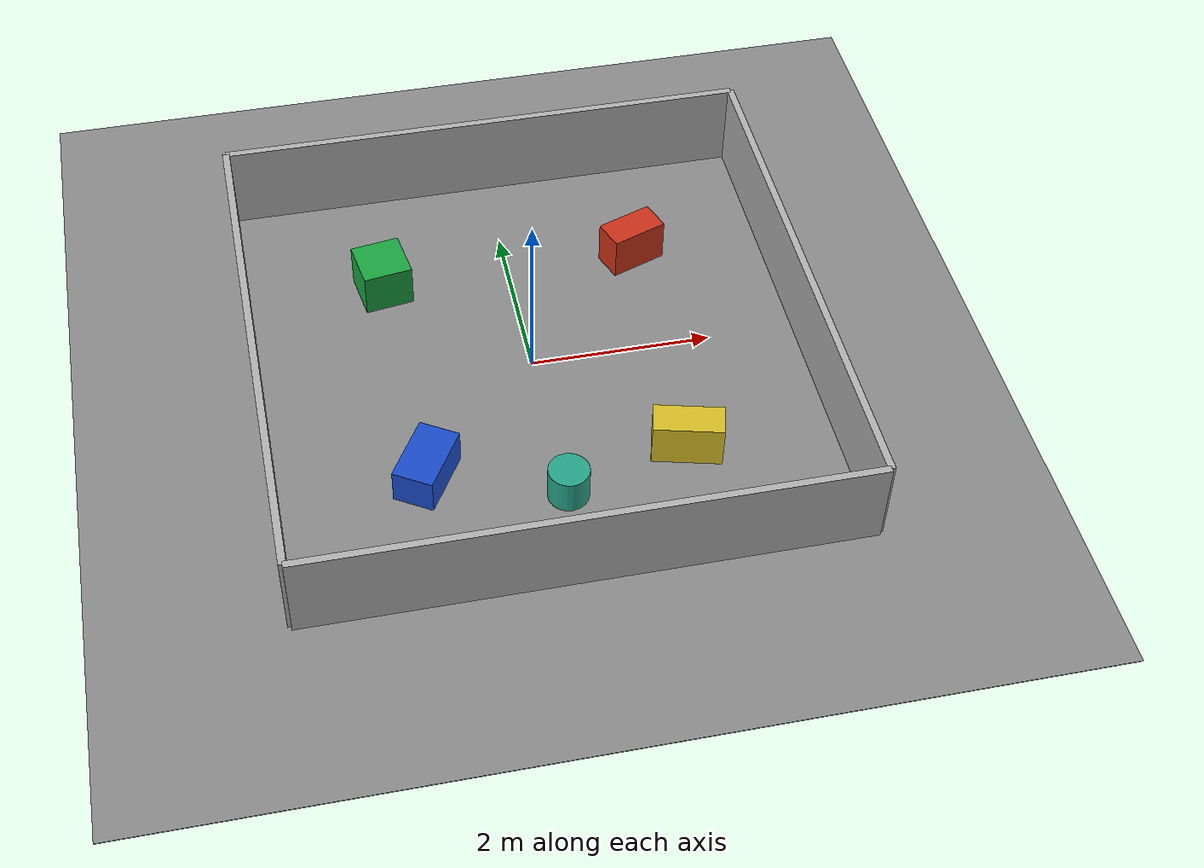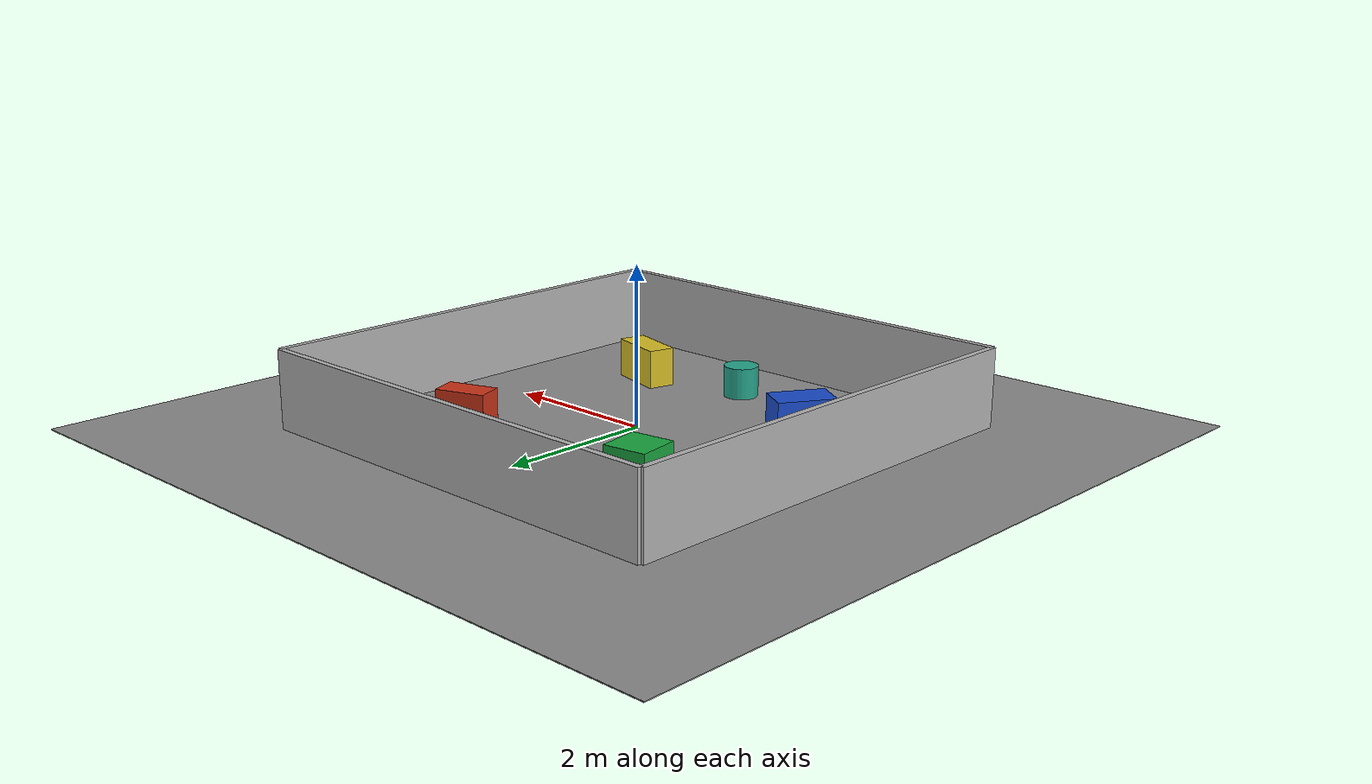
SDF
<?xml version="1.0" ?>
<sdf version="1.6">
  <world name="robis_mapping_world">
    <include>
      <uri>model://sun</uri>
    </include>
    <model name="large_floor_10x10">
      <static>true</static>
      <pose>0 0 -0.005 0 0 0</pose>
      <link name="link">
        <collision name="collision">
          <geometry>
            <box>
              <size>10 10 0.01</size>
            </box>
          </geometry>
        </collision>
        <visual name="visual">
          <geometry>
            <box>
              <size>10 10 0.01</size>
            </box>
          </geometry>
          <material>
            <ambient>0.55 0.55 0.55 1</ambient>
            <diffuse>0.55 0.55 0.55 1</diffuse>
          </material>
        </visual>
      </link>
    </model>
    <physics name="default_physics" type="ode">
      <max_step_size>0.001</max_step_size>
      <real_time_update_rate>1000</real_time_update_rate>
    </physics>
    <model name="north_wall">
      <static>true</static>
      <pose>0 3 0.5 0 0 0</pose>
      <link name="link">
        <collision name="collision">
          <geometry>
            <box>
              <size>6 0.08 1</size>
            </box>
          </geometry>
        </collision>
        <visual name="visual">
          <geometry>
            <box>
              <size>6 0.08 1</size>
            </box>
          </geometry>
          <material>
            <ambient>0.7 0.7 0.7 1</ambient>
          </material>
        </visual>
      </link>
    </model>
    <model name="south_wall">
      <static>true</static>
      <pose>0 -3 0.5 0 0 0</pose>
      <link name="link">
        <collision name="collision">
          <geometry>
            <box>
              <size>6 0.08 1</size>
            </box>
          </geometry>
        </collision>
        <visual name="visual">
          <geometry>
            <box>
              <size>6 0.08 1</size>
            </box>
          </geometry>
          <material>
            <ambient>0.7 0.7 0.7 1</ambient>
          </material>
        </visual>
      </link>
    </model>
    <model name="east_wall">
      <static>true</static>
      <pose>3 0 0.5 0 0 0</pose>
      <link name="link">
        <collision name="collision">
          <geometry>
            <box>
              <size>0.08 6 1</size>
            </box>
          </geometry>
        </collision>
        <visual name="visual">
          <geometry>
            <box>
              <size>0.08 6 1</size>
            </box>
          </geometry>
          <material>
            <ambient>0.7 0.7 0.7 1</ambient>
          </material>
        </visual>
      </link>
    </model>
    <model name="west_wall">
      <static>true</static>
      <pose>-3 0 0.5 0 0 0</pose>
      <link name="link">
        <collision name="collision">
          <geometry>
            <box>
              <size>0.08 6 1</size>
            </box>
          </geometry>
        </collision>
        <visual name="visual">
          <geometry>
            <box>
              <size>0.08 6 1</size>
            </box>
          </geometry>
          <material>
            <ambient>0.7 0.7 0.7 1</ambient>
          </material>
        </visual>
      </link>
    </model>
    <model name="box_obstacle_1">
      <static>true</static>
      <pose>1.45 1.45 0.25 0 0 0.35</pose>
      <link name="link">
        <collision name="collision">
          <geometry>
            <box>
              <size>0.65 0.35 0.5</size>
            </box>
          </geometry>
        </collision>
        <visual name="visual">
          <geometry>
            <box>
              <size>0.65 0.35 0.5</size>
            </box>
          </geometry>
          <material>
            <ambient>0.8 0.2 0.1 1</ambient>
            <ambient>0.8 0.2 0.1 1</ambient>
            <diffuse>0.8 0.2 0.1 1</diffuse>
          </material>
        </visual>
      </link>
    </model>
    <model name="box_obstacle_2">
      <static>true</static>
      <pose>-1.40 -1.40 0.20 0 0 -0.55</pose>
      <link name="link">
        <collision name="collision">
          <geometry>
            <box>
              <size>0.45 0.75 0.4</size>
            </box>
          </geometry>
        </collision>
        <visual name="visual">
          <geometry>
            <box>
              <size>0.45 0.75 0.4</size>
            </box>
          </geometry>
          <material>
            <ambient>0.1 0.3 0.8 1</ambient>
            <ambient>0.1 0.3 0.8 1</ambient>
            <diffuse>0.1 0.3 0.8 1</diffuse>
          </material>
        </visual>
      </link>
    </model>
    <model name="box_obstacle_3">
      <static>true</static>
      <pose>-1.45 1.45 0.25 0 0 0.15</pose>
      <link name="link">
        <collision name="collision">
          <geometry>
            <box>
              <size>0.55 0.55 0.5</size>
            </box>
          </geometry>
        </collision>
        <visual name="visual">
          <geometry>
            <box>
              <size>0.55 0.55 0.5</size>
            </box>
          </geometry>
          <material>
            <ambient>0.1 0.65 0.25 1</ambient>
            <diffuse>0.1 0.65 0.25 1</diffuse>
            <ambient>0.1 0.65 0.25 1</ambient>
            <diffuse>0.1 0.65 0.25 1</diffuse>
          </material>
        </visual>
      </link>
    </model>
    <model name="box_obstacle_4">
      <static>true</static>
      <pose>1.35 -1.55 0.25 0 0 -0.25</pose>
      <link name="link">
        <collision name="collision">
          <geometry>
            <box>
              <size>0.75 0.35 0.5</size>
            </box>
          </geometry>
        </collision>
        <visual name="visual">
          <geometry>
            <box>
              <size>0.75 0.35 0.5</size>
            </box>
          </geometry>
          <material>
            <ambient>0.85 0.75 0.15 1</ambient>
            <diffuse>0.85 0.75 0.15 1</diffuse>
            <ambient>0.85 0.75 0.15 1</ambient>
            <diffuse>0.85 0.75 0.15 1</diffuse>
          </material>
        </visual>
      </link>
    </model>
    <model name="box_obstacle_6">
      <static>true</static>
      <pose>0.0 -1.90 0.20 0 0 0</pose>
      <link name="link">
        <collision name="collision">
          <geometry>
            <cylinder>
              <radius>0.22</radius>
              <length>0.4</length>
            </cylinder>
          </geometry>
        </collision>
        <visual name="visual">
          <geometry>
            <cylinder>
              <radius>0.22</radius>
              <length>0.4</length>
            </cylinder>
          </geometry>
          <material>
            <ambient>0.15 0.65 0.55 1</ambient>
            <diffuse>0.15 0.65 0.55 1</diffuse>
            <ambient>0.15 0.65 0.55 1</ambient>
            <diffuse>0.15 0.65 0.55 1</diffuse>
          </material>
        </visual>
      </link>
    </model>
  </world>
</sdf>
